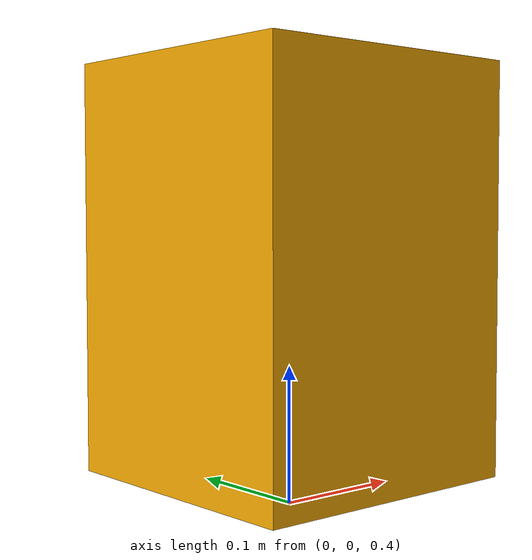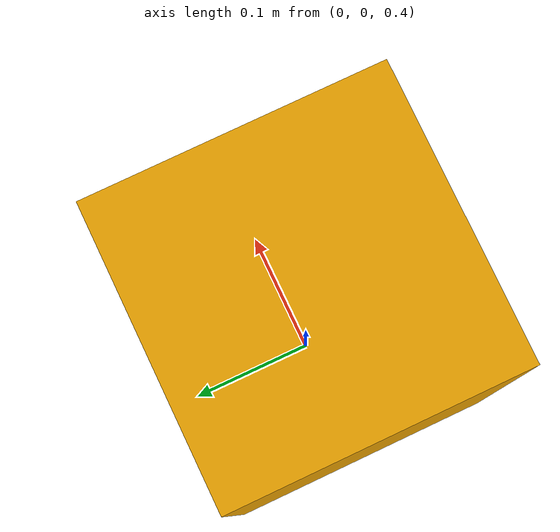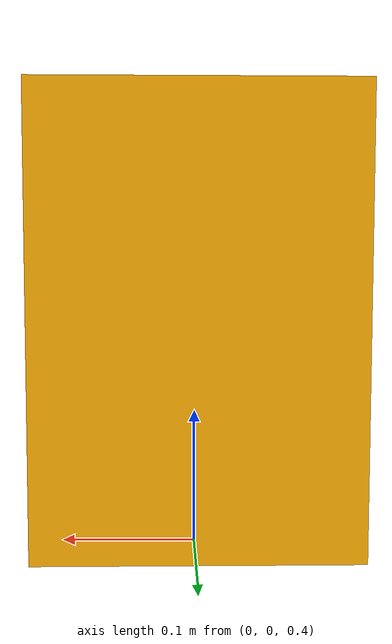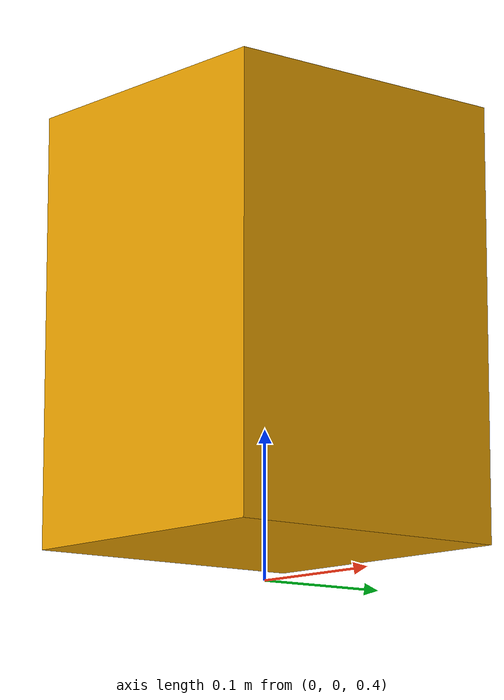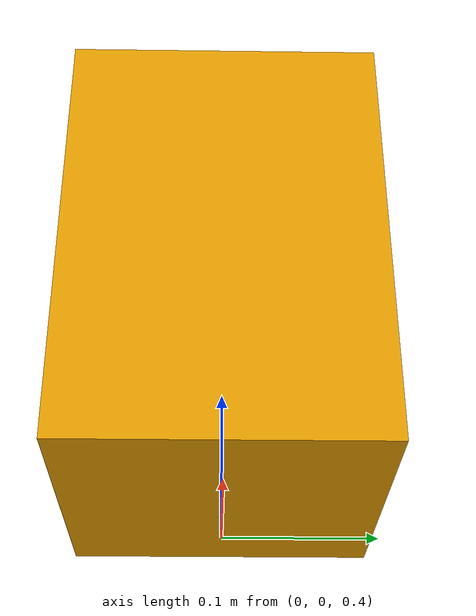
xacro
<?xml version="1.0" ?>
<robot name="LandMark1" xmlns:xacro="http://www.ros.org/wiki/xacro">

<xacro:include filename="$(find LandMark1_description)/urdf/materials.xacro" />
<xacro:include filename="$(find LandMark1_description)/urdf/LandMark1.trans" />
<xacro:include filename="$(find LandMark1_description)/urdf/LandMark1.gazebo" />
<link name="base_link">
  <inertial>
    <origin xyz="0.0 0.0 0.5716479271081686" rpy="0 0 0"/>
    <mass value="159.31386545617607"/>
    <inertia ixx="2.500743" iyy="2.500743" izz="1.635677" ixy="-0.0" iyz="0.0" ixz="0.0"/>
  </inertial>
  <visual>
    <origin xyz="0 0 0.57" rpy="0 0 0"/>
    <geometry>
      <mesh filename="package://LandMark1_description/meshes/LandMark1.dae"/>
    </geometry>
  </visual>
  <collision>
    <origin xyz="0 0 0" rpy="0 0 0"/>
    <geometry>
      <mesh filename="package://LandMark1_description/meshes/LandMark1.dae"/>
    </geometry>
  </collision>
</link>

</robot>

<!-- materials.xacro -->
<robot name="LandMark1" xmlns:xacro="http://www.ros.org/wiki/xacro" >

<material name="silver">
  <color rgba="0.700 0.700 0.700 1.000"/>
</material>

</robot>
